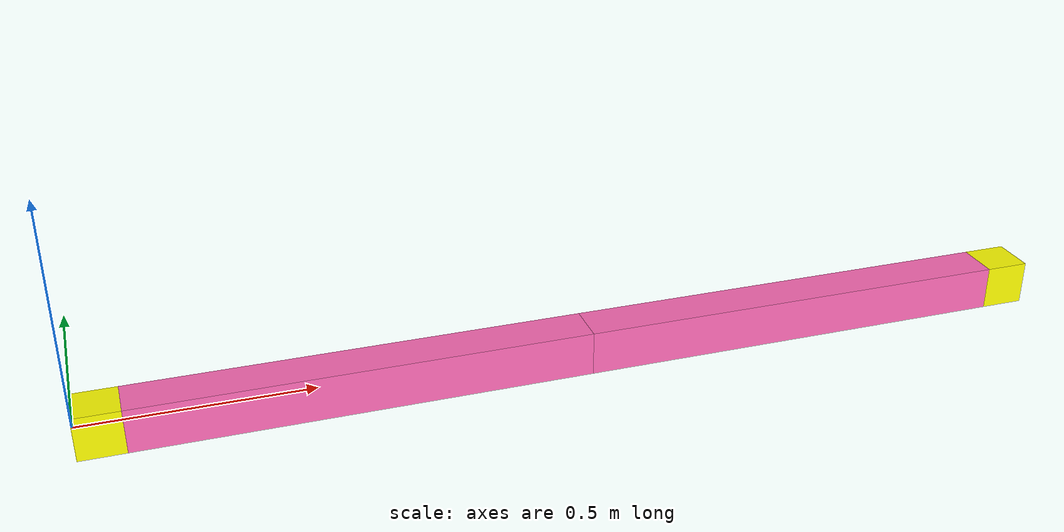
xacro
<?xml version="1.0"?>
<!--Description: this is a simple chain robot whose natural pose is a chain along the y axis-->
<!--Note: Each link should have the contact block, and the recommended values from Erwin Counmans, the PyBullet Creator, stiffness=30000 and damping=1000   -->
<robot xmlns:xacro="http://www.ros.org/wiki/xacro" name="diff_drive">
    <xacro:property name="diff_params" value="${load_yaml('$(find nuturtle_description)/config/diff_params.yaml')}" />
    <xacro:property name="mass_length" value="0.1"/>
    <xacro:property name="massless_length" value="1.0"/>
    <xacro:property name="spring_diameter" value="0.1"/>

    <xacro:property name="grey_mat">
     <material name="arm_grey_mat">
       <color rgba="0.75 0.75 0.75 1.0" />
     </material>
    </xacro:property>

    <xacro:property name="yellow_mat">
     <material name="arm_yellow_mat">
       <color rgba="1 1 0 1.0" />
     </material>
    </xacro:property>

    <xacro:property name="pink_mat">
     <material name="arm_pink_mat">
       <color rgba="1.0 0.42 0.72 1.0" />
     </material>
    </xacro:property>

    <xacro:macro name="_joint" params="name type origin_xyz origin_rpy parent child axis">
        <joint name="${name}" type="${type}">
        <origin rpy="${origin_rpy}" xyz="${origin_xyz}"/>
        <parent link="${parent}" />
        <child link="${child}" />
        <dynamics damping="0.0" friction="0.0"/>
        <limit effort="10000" velocity="10000" lower="1000" upper="-1000" />
        <xacro:if value="${type=='continuous'}">
        <axis xyz="${axis}"/>
        </xacro:if>
        </joint>
    </xacro:macro>

    <xacro:macro name="block_with_unit_mass" params="name">
        <link name="${name}">
            <visual>
                <origin xyz="${mass_length/2.0} 0 0" rpy="0 0 0"/>
                <geometry>
                    <box size="${mass_length} 0.1 0.1"/>
                </geometry>
                <xacro:insert_block name="yellow_mat"/>
            </visual>
            <inertial>
                <mass value="1.0" />
                <inertia ixx="0.0016666" ixy="0.0" ixz="0.0"
                         iyy="0.0016666" iyz="0.0"
                         izz="0.0016666" />
            </inertial>
            <collision>
                <origin xyz="${mass_length/2.0} 0 0" rpy="0 0 0"/>
                <geometry>
                    <box size="${mass_length} 0.1 0.1"/>
                </geometry>
            </collision>
            <contact>
                <rolling_friction value="0.0"/>
                <spinning_friction value="0.0"/>
                <stiffness value="30000.0"/>
                <damping value="1000.0"/>
                <lateral_friction value="0.0"/>
            </contact>
        </link>
    </xacro:macro>

    <xacro:macro name="block_with_no_mass" params="name">
        <link name="${name}">
            <visual>
                <origin xyz="${massless_length/2.0} 0 0" rpy="0 0 0"/>
                <geometry>
                    <box size="${massless_length} 0.1 0.1"/>
                </geometry>
                <xacro:insert_block name="pink_mat"/>
            </visual>
            <inertial>
                <mass value="0.00001" />
                <inertia ixx="0.000000002" ixy="0.0" ixz="0.0"
                         iyy="0.000000084" iyz="0.0"
                         izz="0.000000084" />
            </inertial>
            <collision>
                <origin xyz="${massless_length/2.0} 0 0" rpy="0 0 0"/>
                <geometry>
                    <box size="${massless_length} 0.1 0.1"/>
                </geometry>
            </collision>
            <contact>
                <rolling_friction value="0.0"/>
                <spinning_friction value="0.0"/>
                <stiffness value="30000.0"/>
                <damping value="1000.0"/>
                <lateral_friction value="0.0"/>
            </contact>
        </link>
    </xacro:macro>

    <xacro:block_with_unit_mass
            name="base_link"
    />

    <xacro:_joint
            name="base_link_arm1"
            type="fixed"
            origin_xyz ="${mass_length} 0 0" origin_rpy="0.0 0.0 0.0"
            parent = "base_link"
            child = "arm1"
            axis = "0 0 1"
    />

    <xacro:block_with_no_mass
            name="arm1"
    />

    <xacro:_joint
            name="spring_joint"
            type="continuous"
            origin_xyz ="${massless_length} 0 0" origin_rpy="0.0 0.0 0.0"
            parent = "arm1"
            child = "arm2"
            axis = "0 0 1"
    />

    <xacro:block_with_no_mass
            name="arm2"
    />

    <xacro:_joint
            name="arm2_end_effector"
            type="fixed"
            origin_xyz ="${massless_length} 0 0" origin_rpy="0.0 0.0 0.0"
            parent = "arm2"
            child = "end_effector"
            axis = "0 0 1"
    />

    <xacro:block_with_unit_mass
            name="end_effector"
    />

</robot>
